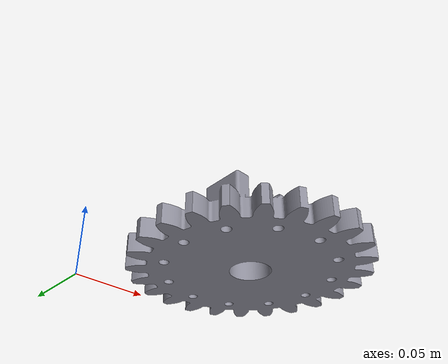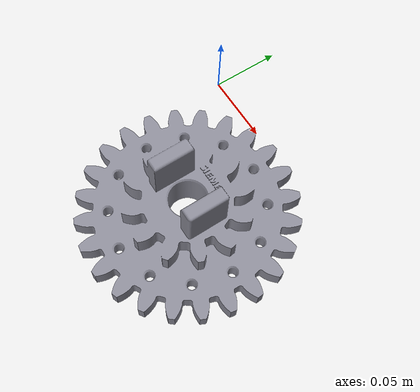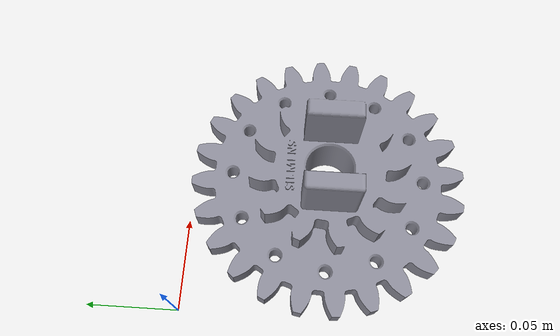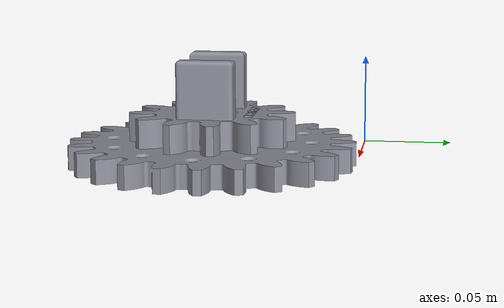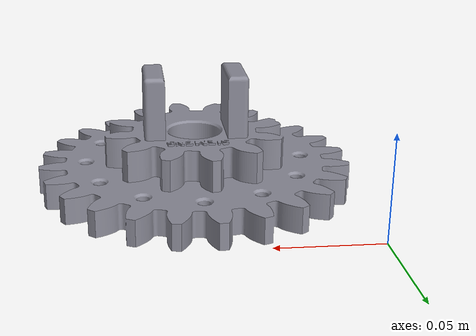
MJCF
<mujoco model="gear_compound">
  <compiler angle="radian" autolimits="true" inertiafromgeom="true"
            meshdir="../assets/gearbox" texturedir="../assets/gearbox"/>

  <asset>
    <mesh name="gear_compound" file="gear_compound.stl" scale="1 1 1"/>
    <material name="metal_mat" rgba="0.55 0.55 0.60 1"
              specular="0.8" shininess="0.5" reflectance="0.3"/>
  </asset>

  <worldbody>
    <body name="gear_compound">
      <freejoint name="gear_compound_joint"/>
      <geom name="gear_compound_visual" mesh="gear_compound" type="mesh" material="metal_mat"
            contype="0" conaffinity="0"
            euler="3.14159 0 0" pos="0 0 0.05823"/>
    </body>
  </worldbody>
</mujoco>
